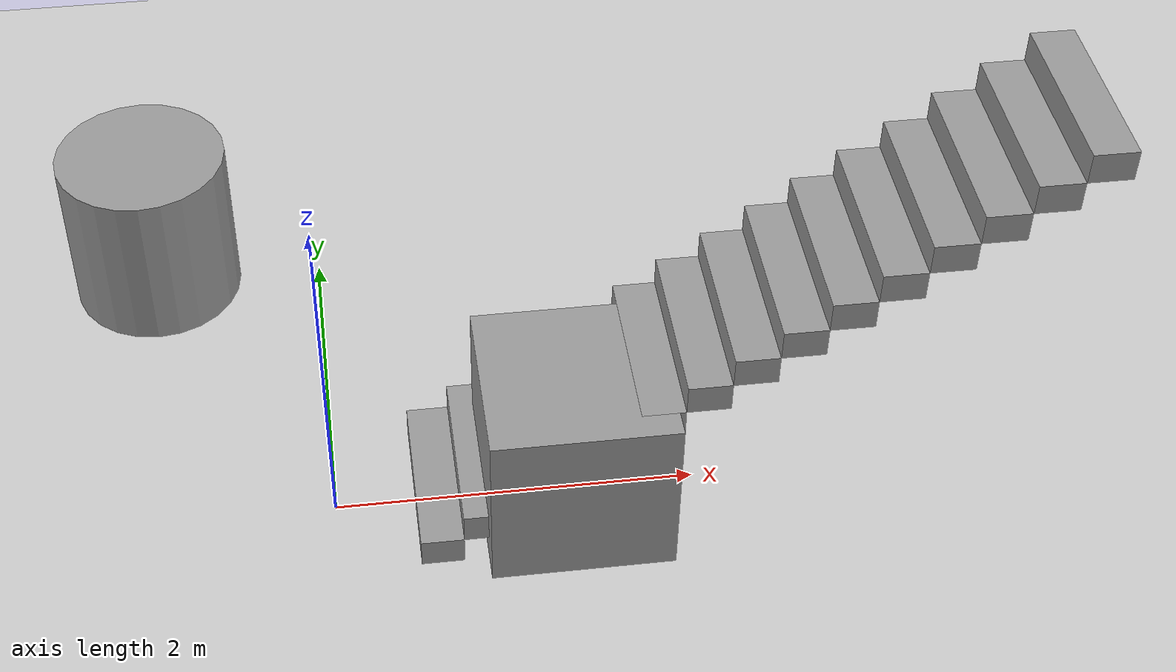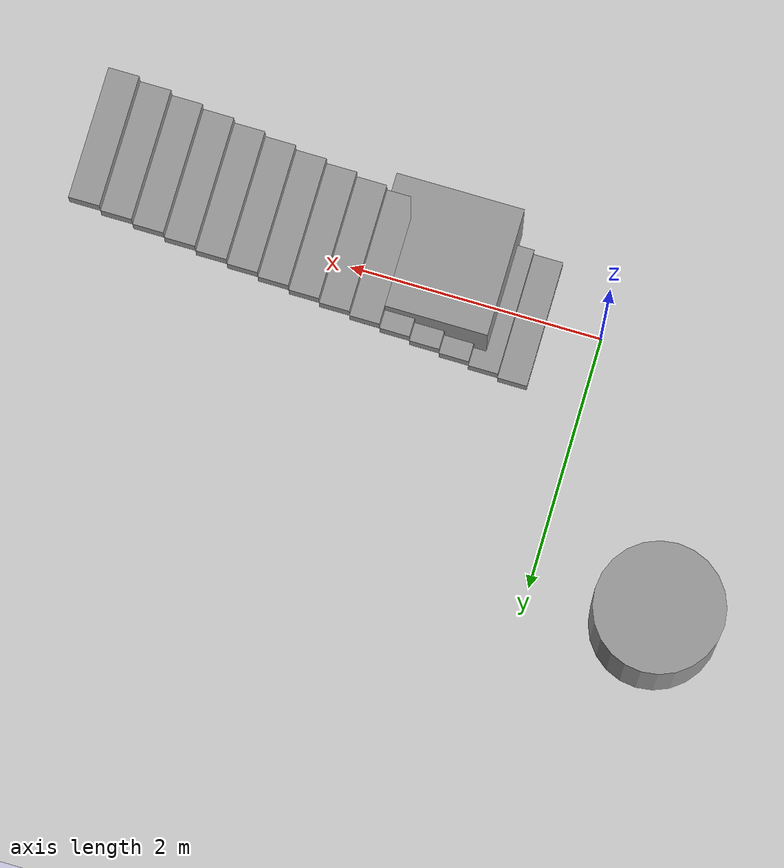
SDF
<sdf version='1.6'>
  <world name='default'>
    <physics name='default_physics' default='0' type='ode'>
      <max_step_size>0.0003</max_step_size>
      <real_time_update_rate>-1</real_time_update_rate>
      <ode>
        <solver>
          <iters>300</iters>
          <type>quick</type>
          <sor>1.3</sor>
          <use_dynamic_moi_rescaling>0</use_dynamic_moi_rescaling>
        </solver>
        <constraints>
          <cfm>0</cfm>
          <erp>0.2</erp>
          <contact_max_correcting_vel>100</contact_max_correcting_vel>
          <contact_surface_layer>0.001</contact_surface_layer>
        </constraints>
      </ode>
      <real_time_factor>1</real_time_factor>
    </physics>
    <model name='ground_plane'>
      <static>1</static>
      <link name='link'>
        <collision name='collision'>
          <geometry>
            <plane>
              <normal>0 0 1</normal>
              <size>100 100</size>
            </plane>
          </geometry>
          <surface>
            <contact>
              <collide_bitmask>65535</collide_bitmask>
              <ode/>
            </contact>
            <friction>
              <ode>
                <mu>100</mu>
                <mu2>50</mu2>
              </ode>
              <torsional>
                <ode/>
              </torsional>
            </friction>
            <bounce/>
          </surface>
          <max_contacts>10</max_contacts>
        </collision>
        <visual name='visual'>
          <cast_shadows>0</cast_shadows>
          <geometry>
            <plane>
              <normal>0 0 1</normal>
              <size>100 100</size>
            </plane>
          </geometry>
          <material>
            <script>
              <uri>file://media/materials/scripts/gazebo.material</uri>
              <name>Gazebo/Grey</name>
            </script>
          </material>
        </visual>
        <self_collide>0</self_collide>
        <enable_wind>0</enable_wind>
        <kinematic>0</kinematic>
      </link>
    </model>
    <light name='sun' type='directional'>
      <cast_shadows>1</cast_shadows>
      <pose frame=''>0 0 10 0 -0 0</pose>
      <diffuse>0.8 0.8 0.8 1</diffuse>
      <specular>0.2 0.2 0.2 1</specular>
      <attenuation>
        <range>1000</range>
        <constant>0.9</constant>
        <linear>0.01</linear>
        <quadratic>0.001</quadratic>
      </attenuation>
      <direction>-0.5 0.1 -0.9</direction>
    </light>
    <model name='unit_box'>
      <pose frame=''>1.30648 -0.107265 0.5 0 -0 0</pose>
      <link name='link'>
        <inertial>
          <mass>1</mass>
          <inertia>
            <ixx>0.166667</ixx>
            <ixy>0</ixy>
            <ixz>0</ixz>
            <iyy>0.166667</iyy>
            <iyz>0</iyz>
            <izz>0.166667</izz>
          </inertia>
          <pose frame=''>0 0 0 0 -0 0</pose>
        </inertial>
        <collision name='collision'>
          <geometry>
            <box>
              <size>1 1 1</size>
            </box>
          </geometry>
          <max_contacts>10</max_contacts>
          <surface>
            <contact>
              <ode/>
            </contact>
            <bounce/>
            <friction>
              <torsional>
                <ode/>
              </torsional>
              <ode/>
            </friction>
          </surface>
        </collision>
        <visual name='visual'>
          <geometry>
            <box>
              <size>1 1 1</size>
            </box>
          </geometry>
          <material>
            <script>
              <name>Gazebo/Grey</name>
              <uri>file://media/materials/scripts/gazebo.material</uri>
            </script>
          </material>
        </visual>
        <self_collide>0</self_collide>
        <enable_wind>0</enable_wind>
        <kinematic>0</kinematic>
      </link>
    </model>
    <gui fullscreen='0'>
      <camera name='user_camera'>
        <pose frame=''>-4.35061 -3.66033 1.23797 0 0.119641 0.66818</pose>
        <view_controller>orbit</view_controller>
        <projection_type>perspective</projection_type>
      </camera>
    </gui>
    <model name='unit_cylinder'>
      <pose frame=''>-0.989284 2.00207 0.5 0 -0 0</pose>
      <link name='link'>
        <inertial>
          <mass>1</mass>
          <inertia>
            <ixx>0.145833</ixx>
            <ixy>0</ixy>
            <ixz>0</ixz>
            <iyy>0.145833</iyy>
            <iyz>0</iyz>
            <izz>0.125</izz>
          </inertia>
          <pose frame=''>0 0 0 0 -0 0</pose>
        </inertial>
        <collision name='collision'>
          <geometry>
            <cylinder>
              <radius>0.5</radius>
              <length>1</length>
            </cylinder>
          </geometry>
          <max_contacts>10</max_contacts>
          <surface>
            <contact>
              <ode/>
            </contact>
            <bounce/>
            <friction>
              <torsional>
                <ode/>
              </torsional>
              <ode/>
            </friction>
          </surface>
        </collision>
        <visual name='visual'>
          <geometry>
            <cylinder>
              <radius>0.5</radius>
              <length>1</length>
            </cylinder>
          </geometry>
          <material>
            <script>
              <name>Gazebo/Grey</name>
              <uri>file://media/materials/scripts/gazebo.material</uri>
            </script>
          </material>
        </visual>
        <self_collide>0</self_collide>
        <enable_wind>0</enable_wind>
        <kinematic>0</kinematic>
      </link>
    </model>
    <model name='right_ahead_stairs'>
      <pose frame=''>2.18998 0.037755 0 0 -0 0</pose>
      <link name='Stairs_1'>
        <visual name='Stairs_1_Visual_0'>
          <pose frame=''>-1.63333 -0 0.083333 0 -0 1.5708</pose>
          <geometry>
            <box>
              <size>1 0.233333 0.166667</size>
            </box>
          </geometry>
          <material>
            <script>
              <uri>file://media/materials/scripts/gazebo.material</uri>
              <name>Gazebo/Grey</name>
            </script>
            <ambient>1 1 1 1</ambient>
          </material>
          <meta>
            <layer>0</layer>
          </meta>
        </visual>
        <collision name='Stairs_1_Collision_0'>
          <geometry>
            <box>
              <size>1 0.233333 0.166667</size>
            </box>
          </geometry>
          <pose frame=''>-1.63333 -0 0.083333 0 -0 1.5708</pose>
          <max_contacts>10</max_contacts>
          <surface>
            <contact>
              <ode/>
            </contact>
            <bounce/>
            <friction>
              <torsional>
                <ode/>
              </torsional>
              <ode/>
            </friction>
          </surface>
        </collision>
        <visual name='Stairs_1_Visual_1'>
          <pose frame=''>-1.4 -0 0.25 0 -0 1.5708</pose>
          <geometry>
            <box>
              <size>1 0.233333 0.166667</size>
            </box>
          </geometry>
          <material>
            <script>
              <uri>file://media/materials/scripts/gazebo.material</uri>
              <name>Gazebo/Grey</name>
            </script>
            <ambient>1 1 1 1</ambient>
          </material>
          <meta>
            <layer>0</layer>
          </meta>
        </visual>
        <collision name='Stairs_1_Collision_1'>
          <geometry>
            <box>
              <size>1 0.233333 0.166667</size>
            </box>
          </geometry>
          <pose frame=''>-1.4 -0 0.25 0 -0 1.5708</pose>
          <max_contacts>10</max_contacts>
          <surface>
            <contact>
              <ode/>
            </contact>
            <bounce/>
            <friction>
              <torsional>
                <ode/>
              </torsional>
              <ode/>
            </friction>
          </surface>
        </collision>
        <visual name='Stairs_1_Visual_2'>
          <pose frame=''>-1.16667 -0 0.416667 0 -0 1.5708</pose>
          <geometry>
            <box>
              <size>1 0.233333 0.166667</size>
            </box>
          </geometry>
          <material>
            <script>
              <uri>file://media/materials/scripts/gazebo.material</uri>
              <name>Gazebo/Grey</name>
            </script>
            <ambient>1 1 1 1</ambient>
          </material>
          <meta>
            <layer>0</layer>
          </meta>
        </visual>
        <collision name='Stairs_1_Collision_2'>
          <geometry>
            <box>
              <size>1 0.233333 0.166667</size>
            </box>
          </geometry>
          <pose frame=''>-1.16667 -0 0.416667 0 -0 1.5708</pose>
          <max_contacts>10</max_contacts>
          <surface>
            <contact>
              <ode/>
            </contact>
            <bounce/>
            <friction>
              <torsional>
                <ode/>
              </torsional>
              <ode/>
            </friction>
          </surface>
        </collision>
        <visual name='Stairs_1_Visual_3'>
          <pose frame=''>-0.933334 -0 0.583333 0 -0 1.5708</pose>
          <geometry>
            <box>
              <size>1 0.233333 0.166667</size>
            </box>
          </geometry>
          <material>
            <script>
              <uri>file://media/materials/scripts/gazebo.material</uri>
              <name>Gazebo/Grey</name>
            </script>
            <ambient>1 1 1 1</ambient>
          </material>
          <meta>
            <layer>0</layer>
          </meta>
        </visual>
        <collision name='Stairs_1_Collision_3'>
          <geometry>
            <box>
              <size>1 0.233333 0.166667</size>
            </box>
          </geometry>
          <pose frame=''>-0.933334 -0 0.583333 0 -0 1.5708</pose>
          <max_contacts>10</max_contacts>
          <surface>
            <contact>
              <ode/>
            </contact>
            <bounce/>
            <friction>
              <torsional>
                <ode/>
              </torsional>
              <ode/>
            </friction>
          </surface>
        </collision>
        <visual name='Stairs_1_Visual_4'>
          <pose frame=''>-0.7 -0 0.75 0 -0 1.5708</pose>
          <geometry>
            <box>
              <size>1 0.233333 0.166667</size>
            </box>
          </geometry>
          <material>
            <script>
              <uri>file://media/materials/scripts/gazebo.material</uri>
              <name>Gazebo/Grey</name>
            </script>
            <ambient>1 1 1 1</ambient>
          </material>
          <meta>
            <layer>0</layer>
          </meta>
        </visual>
        <collision name='Stairs_1_Collision_4'>
          <geometry>
            <box>
              <size>1 0.233333 0.166667</size>
            </box>
          </geometry>
          <pose frame=''>-0.7 -0 0.75 0 -0 1.5708</pose>
          <max_contacts>10</max_contacts>
          <surface>
            <contact>
              <ode/>
            </contact>
            <bounce/>
            <friction>
              <torsional>
                <ode/>
              </torsional>
              <ode/>
            </friction>
          </surface>
        </collision>
        <visual name='Stairs_1_Visual_5'>
          <pose frame=''>-0.466667 -0 0.916667 0 -0 1.5708</pose>
          <geometry>
            <box>
              <size>1 0.233333 0.166667</size>
            </box>
          </geometry>
          <material>
            <script>
              <uri>file://media/materials/scripts/gazebo.material</uri>
              <name>Gazebo/Grey</name>
            </script>
            <ambient>1 1 1 1</ambient>
          </material>
          <meta>
            <layer>0</layer>
          </meta>
        </visual>
        <collision name='Stairs_1_Collision_5'>
          <geometry>
            <box>
              <size>1 0.233333 0.166667</size>
            </box>
          </geometry>
          <pose frame=''>-0.466667 -0 0.916667 0 -0 1.5708</pose>
          <max_contacts>10</max_contacts>
          <surface>
            <contact>
              <ode/>
            </contact>
            <bounce/>
            <friction>
              <torsional>
                <ode/>
              </torsional>
              <ode/>
            </friction>
          </surface>
        </collision>
        <visual name='Stairs_1_Visual_6'>
          <pose frame=''>-0.233333 -0 1.08333 0 -0 1.5708</pose>
          <geometry>
            <box>
              <size>1 0.233333 0.166667</size>
            </box>
          </geometry>
          <material>
            <script>
              <uri>file://media/materials/scripts/gazebo.material</uri>
              <name>Gazebo/Grey</name>
            </script>
            <ambient>1 1 1 1</ambient>
          </material>
          <meta>
            <layer>0</layer>
          </meta>
        </visual>
        <collision name='Stairs_1_Collision_6'>
          <geometry>
            <box>
              <size>1 0.233333 0.166667</size>
            </box>
          </geometry>
          <pose frame=''>-0.233333 -0 1.08333 0 -0 1.5708</pose>
          <max_contacts>10</max_contacts>
          <surface>
            <contact>
              <ode/>
            </contact>
            <bounce/>
            <friction>
              <torsional>
                <ode/>
              </torsional>
              <ode/>
            </friction>
          </surface>
        </collision>
        <visual name='Stairs_1_Visual_7'>
          <pose frame=''>0 0 1.25 0 -0 1.5708</pose>
          <geometry>
            <box>
              <size>1 0.233333 0.166667</size>
            </box>
          </geometry>
          <material>
            <script>
              <uri>file://media/materials/scripts/gazebo.material</uri>
              <name>Gazebo/Grey</name>
            </script>
            <ambient>1 1 1 1</ambient>
          </material>
          <meta>
            <layer>0</layer>
          </meta>
        </visual>
        <collision name='Stairs_1_Collision_7'>
          <geometry>
            <box>
              <size>1 0.233333 0.166667</size>
            </box>
          </geometry>
          <pose frame=''>0 0 1.25 0 -0 1.5708</pose>
          <max_contacts>10</max_contacts>
          <surface>
            <contact>
              <ode/>
            </contact>
            <bounce/>
            <friction>
              <torsional>
                <ode/>
              </torsional>
              <ode/>
            </friction>
          </surface>
        </collision>
        <visual name='Stairs_1_Visual_8'>
          <pose frame=''>0.233333 0 1.41667 0 -0 1.5708</pose>
          <geometry>
            <box>
              <size>1 0.233333 0.166667</size>
            </box>
          </geometry>
          <material>
            <script>
              <uri>file://media/materials/scripts/gazebo.material</uri>
              <name>Gazebo/Grey</name>
            </script>
            <ambient>1 1 1 1</ambient>
          </material>
          <meta>
            <layer>0</layer>
          </meta>
        </visual>
        <collision name='Stairs_1_Collision_8'>
          <geometry>
            <box>
              <size>1 0.233333 0.166667</size>
            </box>
          </geometry>
          <pose frame=''>0.233333 0 1.41667 0 -0 1.5708</pose>
          <max_contacts>10</max_contacts>
          <surface>
            <contact>
              <ode/>
            </contact>
            <bounce/>
            <friction>
              <torsional>
                <ode/>
              </torsional>
              <ode/>
            </friction>
          </surface>
        </collision>
        <visual name='Stairs_1_Visual_9'>
          <pose frame=''>0.466667 0 1.58333 0 -0 1.5708</pose>
          <geometry>
            <box>
              <size>1 0.233333 0.166667</size>
            </box>
          </geometry>
          <material>
            <script>
              <uri>file://media/materials/scripts/gazebo.material</uri>
              <name>Gazebo/Grey</name>
            </script>
            <ambient>1 1 1 1</ambient>
          </material>
          <meta>
            <layer>0</layer>
          </meta>
        </visual>
        <collision name='Stairs_1_Collision_9'>
          <geometry>
            <box>
              <size>1 0.233333 0.166667</size>
            </box>
          </geometry>
          <pose frame=''>0.466667 0 1.58333 0 -0 1.5708</pose>
          <max_contacts>10</max_contacts>
          <surface>
            <contact>
              <ode/>
            </contact>
            <bounce/>
            <friction>
              <torsional>
                <ode/>
              </torsional>
              <ode/>
            </friction>
          </surface>
        </collision>
        <visual name='Stairs_1_Visual_10'>
          <pose frame=''>0.7 0 1.75 0 -0 1.5708</pose>
          <geometry>
            <box>
              <size>1 0.233333 0.166667</size>
            </box>
          </geometry>
          <material>
            <script>
              <uri>file://media/materials/scripts/gazebo.material</uri>
              <name>Gazebo/Grey</name>
            </script>
            <ambient>1 1 1 1</ambient>
          </material>
          <meta>
            <layer>0</layer>
          </meta>
        </visual>
        <collision name='Stairs_1_Collision_10'>
          <geometry>
            <box>
              <size>1 0.233333 0.166667</size>
            </box>
          </geometry>
          <pose frame=''>0.7 0 1.75 0 -0 1.5708</pose>
          <max_contacts>10</max_contacts>
          <surface>
            <contact>
              <ode/>
            </contact>
            <bounce/>
            <friction>
              <torsional>
                <ode/>
              </torsional>
              <ode/>
            </friction>
          </surface>
        </collision>
        <visual name='Stairs_1_Visual_11'>
          <pose frame=''>0.933334 0 1.91667 0 -0 1.5708</pose>
          <geometry>
            <box>
              <size>1 0.233333 0.166667</size>
            </box>
          </geometry>
          <material>
            <script>
              <uri>file://media/materials/scripts/gazebo.material</uri>
              <name>Gazebo/Grey</name>
            </script>
            <ambient>1 1 1 1</ambient>
          </material>
          <meta>
            <layer>0</layer>
          </meta>
        </visual>
        <collision name='Stairs_1_Collision_11'>
          <geometry>
            <box>
              <size>1 0.233333 0.166667</size>
            </box>
          </geometry>
          <pose frame=''>0.933334 0 1.91667 0 -0 1.5708</pose>
          <max_contacts>10</max_contacts>
          <surface>
            <contact>
              <ode/>
            </contact>
            <bounce/>
            <friction>
              <torsional>
                <ode/>
              </torsional>
              <ode/>
            </friction>
          </surface>
        </collision>
        <visual name='Stairs_1_Visual_12'>
          <pose frame=''>1.16667 0 2.08333 0 -0 1.5708</pose>
          <geometry>
            <box>
              <size>1 0.233333 0.166667</size>
            </box>
          </geometry>
          <material>
            <script>
              <uri>file://media/materials/scripts/gazebo.material</uri>
              <name>Gazebo/Grey</name>
            </script>
            <ambient>1 1 1 1</ambient>
          </material>
          <meta>
            <layer>0</layer>
          </meta>
        </visual>
        <collision name='Stairs_1_Collision_12'>
          <geometry>
            <box>
              <size>1 0.233333 0.166667</size>
            </box>
          </geometry>
          <pose frame=''>1.16667 0 2.08333 0 -0 1.5708</pose>
          <max_contacts>10</max_contacts>
          <surface>
            <contact>
              <ode/>
            </contact>
            <bounce/>
            <friction>
              <torsional>
                <ode/>
              </torsional>
              <ode/>
            </friction>
          </surface>
        </collision>
        <visual name='Stairs_1_Visual_13'>
          <pose frame=''>1.4 0 2.25 0 -0 1.5708</pose>
          <geometry>
            <box>
              <size>1 0.233333 0.166667</size>
            </box>
          </geometry>
          <material>
            <script>
              <uri>file://media/materials/scripts/gazebo.material</uri>
              <name>Gazebo/Grey</name>
            </script>
            <ambient>1 1 1 1</ambient>
          </material>
          <meta>
            <layer>0</layer>
          </meta>
        </visual>
        <collision name='Stairs_1_Collision_13'>
          <geometry>
            <box>
              <size>1 0.233333 0.166667</size>
            </box>
          </geometry>
          <pose frame=''>1.4 0 2.25 0 -0 1.5708</pose>
          <max_contacts>10</max_contacts>
          <surface>
            <contact>
              <ode/>
            </contact>
            <bounce/>
            <friction>
              <torsional>
                <ode/>
              </torsional>
              <ode/>
            </friction>
          </surface>
        </collision>
        <visual name='Stairs_1_Visual_14'>
          <pose frame=''>1.63333 0 2.41667 0 -0 1.5708</pose>
          <geometry>
            <box>
              <size>1 0.233333 0.166667</size>
            </box>
          </geometry>
          <material>
            <script>
              <uri>file://media/materials/scripts/gazebo.material</uri>
              <name>Gazebo/Grey</name>
            </script>
            <ambient>1 1 1 1</ambient>
          </material>
          <meta>
            <layer>0</layer>
          </meta>
        </visual>
        <collision name='Stairs_1_Collision_14'>
          <geometry>
            <box>
              <size>1 0.233333 0.166667</size>
            </box>
          </geometry>
          <pose frame=''>1.63333 0 2.41667 0 -0 1.5708</pose>
          <max_contacts>10</max_contacts>
          <surface>
            <contact>
              <ode/>
            </contact>
            <bounce/>
            <friction>
              <torsional>
                <ode/>
              </torsional>
              <ode/>
            </friction>
          </surface>
        </collision>
        <self_collide>0</self_collide>
        <enable_wind>0</enable_wind>
        <kinematic>0</kinematic>
      </link>
      <static>1</static>
    </model>
  </world>
</sdf>
